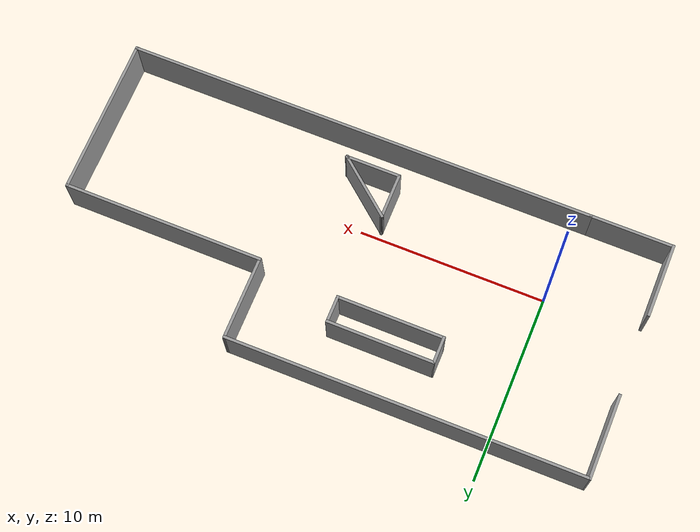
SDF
<?xml version='1.0'?>
<sdf version='1.6'>
  <model name='agv_demo'>
    <pose frame=''>9.65635 2.05448 0 0 -0 0</pose>
    <link name='Wall_0'>
      <collision name='Wall_0_Collision'>
        <geometry>
          <box>
            <size>4.5 0.15 2.5</size>
          </box>
        </geometry>
        <pose frame=''>0 0 1.25 0 -0 0</pose>
      </collision>
      <visual name='Wall_0_Visual'>
        <pose frame=''>0 0 1.25 0 -0 0</pose>
        <geometry>
          <box>
            <size>4.5 0.15 2.5</size>
          </box>
        </geometry>
        <material>
          <script>
            <uri>file://media/materials/scripts/gazebo.material</uri>
            <name>Gazebo/Grey</name>
          </script>
          <ambient>1 1 1 1</ambient>
        </material>
        <meta>
          <layer>0</layer>
        </meta>
      </visual>
      <pose frame=''>-12.5499 -6.3427 0 0 -0 3.14159</pose>
    </link>
    <link name='Wall_13'>
      <collision name='Wall_13_Collision'>
        <geometry>
          <box>
            <size>5.75 0.15 2.5</size>
          </box>
        </geometry>
        <pose frame=''>0 0 1.25 0 -0 0</pose>
      </collision>
      <visual name='Wall_13_Visual'>
        <pose frame=''>0 0 1.25 0 -0 0</pose>
        <geometry>
          <box>
            <size>5.75 0.15 2.5</size>
          </box>
        </geometry>
        <material>
          <script>
            <uri>file://media/materials/scripts/gazebo.material</uri>
            <name>Gazebo/Grey</name>
          </script>
          <ambient>1 1 1 1</ambient>
        </material>
        <meta>
          <layer>0</layer>
        </meta>
      </visual>
      <pose frame=''>-3.02426 2.37852 0 0 -0 0</pose>
    </link>
    <link name='Wall_2'>
      <collision name='Wall_2_Collision'>
        <geometry>
          <box>
            <size>19 0.15 2.5</size>
          </box>
        </geometry>
        <pose frame=''>0 0 1.25 0 -0 0</pose>
      </collision>
      <visual name='Wall_2_Visual'>
        <pose frame=''>0 0 1.25 0 -0 0</pose>
        <geometry>
          <box>
            <size>19 0.15 2.5</size>
          </box>
        </geometry>
        <material>
          <script>
            <uri>file://media/materials/scripts/gazebo.material</uri>
            <name>Gazebo/Grey</name>
          </script>
          <ambient>1 1 1 1</ambient>
        </material>
        <meta>
          <layer>0</layer>
        </meta>
      </visual>
      <pose frame=''>-5.29987 6.30356 0 0 -0 0.004908</pose>
    </link>
    <link name='Wall_22'>
      <collision name='Wall_22_Collision'>
        <geometry>
          <box>
            <size>1.5 0.15 2.5</size>
          </box>
        </geometry>
        <pose frame=''>0 0 1.25 0 -0 0</pose>
      </collision>
      <visual name='Wall_22_Visual'>
        <pose frame=''>0 0 1.25 0 -0 0</pose>
        <geometry>
          <box>
            <size>1.5 0.15 2.5</size>
          </box>
        </geometry>
        <material>
          <script>
            <uri>file://media/materials/scripts/gazebo.material</uri>
            <name>Gazebo/Grey</name>
          </script>
          <ambient>1 1 1 1</ambient>
        </material>
        <meta>
          <layer>0</layer>
        </meta>
      </visual>
      <pose frame=''>-5.82426 3.05351 0 0 -0 1.5708</pose>
    </link>
    <link name='Wall_23'>
      <collision name='Wall_23_Collision'>
        <geometry>
          <box>
            <size>5.75 0.15 2.5</size>
          </box>
        </geometry>
        <pose frame=''>0 0 1.25 0 -0 0</pose>
      </collision>
      <visual name='Wall_23_Visual'>
        <pose frame=''>0 0 1.25 0 -0 0</pose>
        <geometry>
          <box>
            <size>5.75 0.15 2.5</size>
          </box>
        </geometry>
        <material>
          <script>
            <uri>file://media/materials/scripts/gazebo.material</uri>
            <name>Gazebo/Grey</name>
          </script>
          <ambient>1 1 1 1</ambient>
        </material>
        <meta>
          <layer>0</layer>
        </meta>
      </visual>
      <pose frame=''>-3.02426 3.72851 0 0 -0 0</pose>
    </link>
    <link name='Wall_24'>
      <collision name='Wall_24_Collision'>
        <geometry>
          <box>
            <size>1.5 0.15 2.5</size>
          </box>
        </geometry>
        <pose frame=''>0 0 1.25 0 -0 0</pose>
      </collision>
      <visual name='Wall_24_Visual'>
        <pose frame=''>0 0 1.25 0 -0 0</pose>
        <geometry>
          <box>
            <size>1.5 0.15 2.5</size>
          </box>
        </geometry>
        <material>
          <script>
            <uri>file://media/materials/scripts/gazebo.material</uri>
            <name>Gazebo/Grey</name>
          </script>
          <ambient>1 1 1 1</ambient>
        </material>
        <meta>
          <layer>0</layer>
        </meta>
      </visual>
      <pose frame=''>-0.224264 3.05351 0 0 -0 -1.5708</pose>
    </link>
    <link name='Wall_28'>
      <collision name='Wall_28_Collision'>
        <geometry>
          <box>
            <size>4.5 0.15 2.5</size>
          </box>
        </geometry>
        <pose frame=''>0 0 1.25 0 -0 0</pose>
      </collision>
      <visual name='Wall_28_Visual'>
        <pose frame=''>0 0 1.25 0 -0 0</pose>
        <geometry>
          <box>
            <size>4.5 0.15 2.5</size>
          </box>
        </geometry>
        <material>
          <script>
            <uri>file://media/materials/scripts/gazebo.material</uri>
            <name>Gazebo/Grey</name>
          </script>
          <ambient>1 1 1 1</ambient>
        </material>
        <meta>
          <layer>0</layer>
        </meta>
      </visual>
      <pose frame=''>-14.7249 4.0823 0 0 -0 -1.5708</pose>
    </link>
    <link name='Wall_31'>
      <collision name='Wall_31_Collision'>
        <geometry>
          <box>
            <size>4 0.15 2.5</size>
          </box>
        </geometry>
        <pose frame=''>0 0 1.25 0 -0 0</pose>
      </collision>
      <visual name='Wall_31_Visual'>
        <pose frame=''>0 0 1.25 0 -0 0</pose>
        <geometry>
          <box>
            <size>4 0.15 2.5</size>
          </box>
        </geometry>
        <material>
          <script>
            <uri>file://media/materials/scripts/gazebo.material</uri>
            <name>Gazebo/Grey</name>
          </script>
          <ambient>1 1 1 1</ambient>
        </material>
        <meta>
          <layer>0</layer>
        </meta>
      </visual>
      <pose frame=''>-14.7249 -4.41771 0 0 -0 1.5708</pose>
    </link>
    <link name='Wall_33'>
      <collision name='Wall_33_Collision'>
        <geometry>
          <box>
            <size>2.5 0.15 2.5</size>
          </box>
        </geometry>
        <pose frame=''>0 0 1.25 0 -0 0</pose>
      </collision>
      <visual name='Wall_33_Visual'>
        <pose frame=''>0 0 1.25 0 -0 0</pose>
        <geometry>
          <box>
            <size>2.5 0.15 2.5</size>
          </box>
        </geometry>
        <material>
          <script>
            <uri>file://media/materials/scripts/gazebo.material</uri>
            <name>Gazebo/Grey</name>
          </script>
          <ambient>1 1 1 1</ambient>
        </material>
        <meta>
          <layer>0</layer>
        </meta>
      </visual>
      <pose frame=''>-0.647657 -3.57855 0 0 -0 -1.5708</pose>
    </link>
    <link name='Wall_34'>
      <collision name='Wall_34_Collision'>
        <geometry>
          <box>
            <size>3 0.15 2.5</size>
          </box>
        </geometry>
        <pose frame=''>0 0 1.25 0 -0 0</pose>
      </collision>
      <visual name='Wall_34_Visual'>
        <pose frame=''>0 0 1.25 0 -0 0</pose>
        <geometry>
          <box>
            <size>3 0.15 2.5</size>
          </box>
        </geometry>
        <material>
          <script>
            <uri>file://media/materials/scripts/gazebo.material</uri>
            <name>Gazebo/Grey</name>
          </script>
          <ambient>1 1 1 1</ambient>
        </material>
        <meta>
          <layer>0</layer>
        </meta>
      </visual>
      <pose frame=''>0.777342 -4.75355 0 0 -0 0</pose>
    </link>
    <link name='Wall_35'>
      <collision name='Wall_35_Collision'>
        <geometry>
          <box>
            <size>3.84391 0.15 2.5</size>
          </box>
        </geometry>
        <pose frame=''>0 0 1.25 0 -0 0</pose>
      </collision>
      <visual name='Wall_35_Visual'>
        <pose frame=''>0 0 1.25 0 -0 0</pose>
        <geometry>
          <box>
            <size>3.84391 0.15 2.5</size>
          </box>
        </geometry>
        <material>
          <script>
            <uri>file://media/materials/scripts/gazebo.material</uri>
            <name>Gazebo/Grey</name>
          </script>
          <ambient>1 1 1 1</ambient>
        </material>
        <meta>
          <layer>0</layer>
        </meta>
      </visual>
      <pose frame=''>0.777342 -3.57855 0 0 -0 2.45205</pose>
    </link>
    <link name='Wall_37'>
      <collision name='Wall_37_Collision'>
        <geometry>
          <box>
            <size>4.5 0.15 2.5</size>
          </box>
        </geometry>
        <pose frame=''>0 0 1.25 0 -0 0</pose>
      </collision>
      <visual name='Wall_37_Visual'>
        <pose frame=''>0 0 1.25 0 -0 0</pose>
        <geometry>
          <box>
            <size>4.5 0.15 2.5</size>
          </box>
        </geometry>
        <material>
          <script>
            <uri>file://media/materials/scripts/gazebo.material</uri>
            <name>Gazebo/Grey</name>
          </script>
          <ambient>1 1 1 1</ambient>
        </material>
        <meta>
          <layer>0</layer>
        </meta>
      </visual>
      <pose frame=''>4.12513 4.17482 0 0 -0 -1.5708</pose>
    </link>
    <link name='Wall_38'>
      <collision name='Wall_38_Collision'>
        <geometry>
          <box>
            <size>10.75 0.15 2.5</size>
          </box>
        </geometry>
        <pose frame=''>0 0 1.25 0 -0 0</pose>
      </collision>
      <visual name='Wall_38_Visual'>
        <pose frame=''>0 0 1.25 0 -0 0</pose>
        <geometry>
          <box>
            <size>10.75 0.15 2.5</size>
          </box>
        </geometry>
        <material>
          <script>
            <uri>file://media/materials/scripts/gazebo.material</uri>
            <name>Gazebo/Grey</name>
          </script>
          <ambient>1 1 1 1</ambient>
        </material>
        <meta>
          <layer>0</layer>
        </meta>
      </visual>
      <pose frame=''>9.42513 1.99982 0 0 -0 0</pose>
    </link>
    <link name='Wall_39'>
      <collision name='Wall_39_Collision'>
        <geometry>
          <box>
            <size>8.5 0.15 2.5</size>
          </box>
        </geometry>
        <pose frame=''>0 0 1.25 0 -0 0</pose>
      </collision>
      <visual name='Wall_39_Visual'>
        <pose frame=''>0 0 1.25 0 -0 0</pose>
        <geometry>
          <box>
            <size>8.5 0.15 2.5</size>
          </box>
        </geometry>
        <material>
          <script>
            <uri>file://media/materials/scripts/gazebo.material</uri>
            <name>Gazebo/Grey</name>
          </script>
          <ambient>1 1 1 1</ambient>
        </material>
        <meta>
          <layer>0</layer>
        </meta>
      </visual>
      <pose frame=''>14.7251 -2.17518 0 0 -0 -1.5708</pose>
    </link>
    <link name='Wall_43'>
      <collision name='Wall_43_Collision'>
        <geometry>
          <box>
            <size>25.25 0.15 2.5</size>
          </box>
        </geometry>
        <pose frame=''>0 0 1.25 0 -0 0</pose>
      </collision>
      <visual name='Wall_43_Visual'>
        <pose frame=''>0 0 1.25 0 -0 0</pose>
        <geometry>
          <box>
            <size>25.25 0.15 2.5</size>
          </box>
        </geometry>
        <material>
          <script>
            <uri>file://media/materials/scripts/gazebo.material</uri>
            <name>Gazebo/Grey</name>
          </script>
          <ambient>1 1 1 1</ambient>
        </material>
        <meta>
          <layer>0</layer>
        </meta>
      </visual>
      <pose frame=''>2.17513 -6.3427 0 0 -0 0</pose>
    </link>
    <static>1</static>
  </model>
</sdf>
